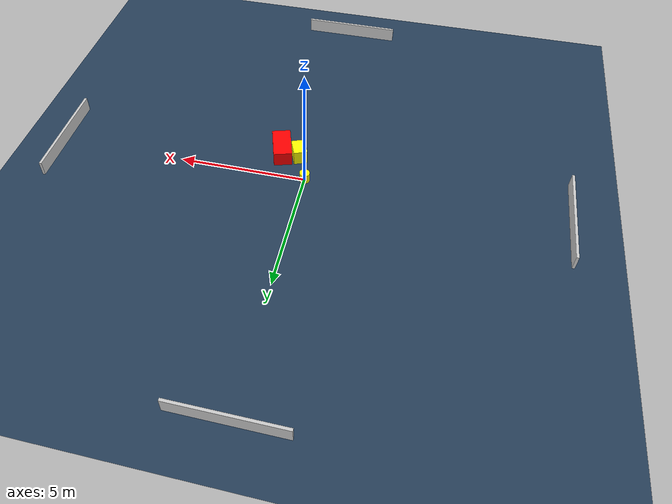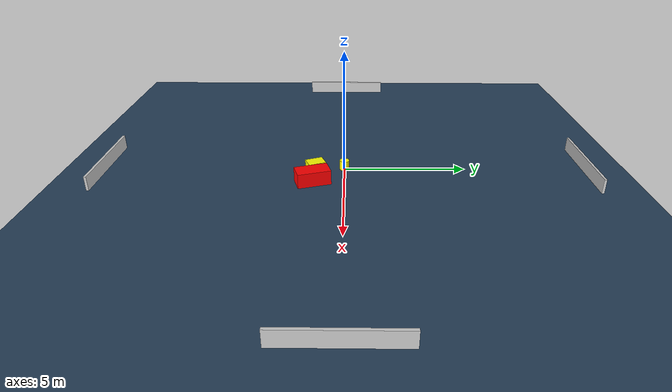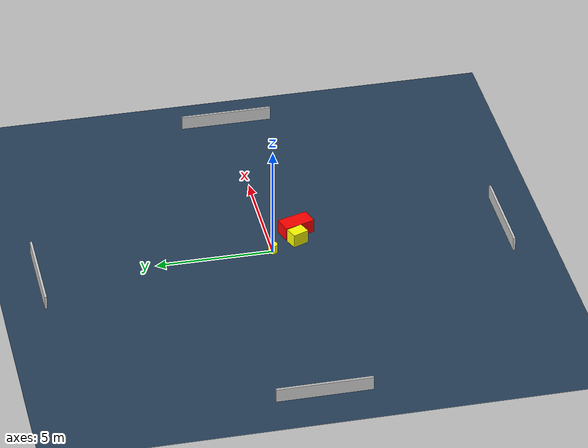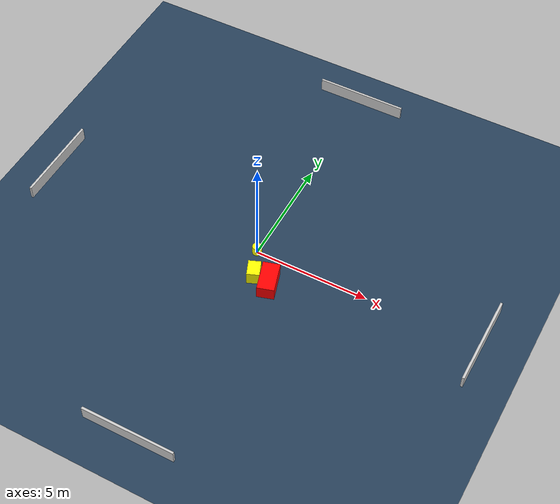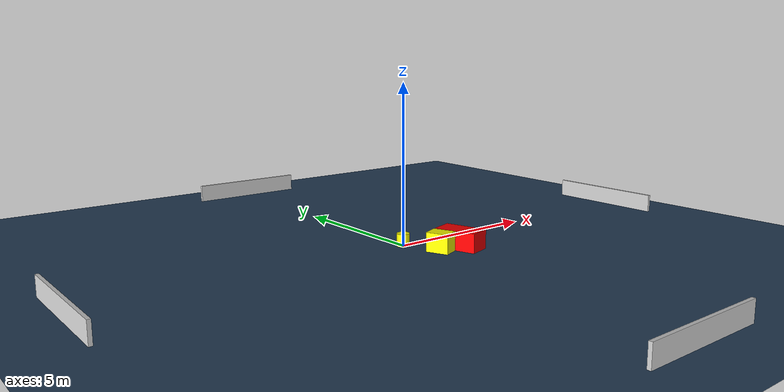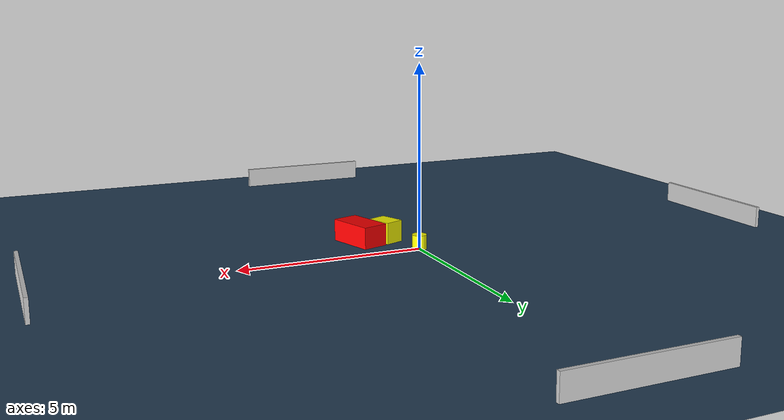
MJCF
<?xml version="1.0" ?>
<mujoco model="generated_environment">
  <option timestep="0.01" integrator="RK4" cone="elliptic"/>
  <default>
    <geom density="1"/>
  </default>
  <asset>
    <texture builtin="gradient" height="3072" name="skybox" rgb1="0.3 0.5 0.7" rgb2="0 0 0" type="skybox" width="512"/>
    <texture builtin="checker" height="300" name="groundplane" rgb1="0.2 0.3 0.4" rgb2="0.1 0.2 0.3" type="2d" width="300"/>
    <material name="groundplane" reflectance="0.2" texrepeat="5 5" texture="groundplane"/>
  </asset>
  <worldbody>
    <light dir="0 0 -1" directional="true" pos="0 0 1.5"/>
    <geom condim="3" friction="0.5 0.005 0.001" material="groundplane" name="floor" pos="0 0 0" size="0 0 0.05" type="plane"/>
    <body name="walls">
      <geom name="wall_1" condim="4" pos="-10.0 0.0 0.3" rgba="0.800000011920929 0.800000011920929 0.800000011920929 1.0" size="0.05 2.0 0.3" type="box"/>
      <geom name="wall_2" condim="4" pos="10.0 0.0 0.3" rgba="0.800000011920929 0.800000011920929 0.800000011920929 1.0" size="0.05 2.0 0.3" type="box"/>
      <geom name="wall_3" condim="4" pos="0.0 -10.0 0.3" rgba="0.800000011920929 0.800000011920929 0.800000011920929 1.0" size="2.0 0.05 0.3" type="box"/>
      <geom name="wall_4" condim="4" pos="0.0 10.0 0.3" rgba="0.800000011920929 0.800000011920929 0.800000011920929 1.0" size="2.0 0.05 0.3" type="box"/>
    </body>
    <body name="robot">
      <joint name="joint_x" type="slide" pos="0 0 0" axis="1 0 0"/>
      <joint name="joint_y" type="slide" pos="0 0 0" axis="0 1 0"/>
      <geom name="robot" type="cylinder" pos="0.0 0.0 0.2" size="0.2 0.2 0.0" mass="5.0" friction="1.0 0.005 0.0001" condim="4" rgba="1.0 1.0 0.0 1.0"/>
    </body>
    <body name="obstacle_1_movable">
      <geom name="obstacle_1_movable" condim="4" pos="0.4915577970497412 -1.1782770715132778 0.3" euler="0 0 21.909651739569156" friction="0.0 0.005 0.001" rgba="1.0 1.0 0.0 1.0" size="0.26785472261510523 0.3565793100329263 0.3" type="box" mass="0.1"/>
      <joint type="free"/>
    </body>
    <body name="obstacle_2_static">
      <geom name="obstacle_2_static" condim="4" pos="1.2148977580491411 -1.2646271292586797 0.3" euler="0 0 17.024870464787067" friction="0.0 0.005 0.001" rgba="1.0 0.0 0.0 1.0" size="0.36384182965054634 0.6788505654893002 0.3" type="box"/>
    </body>
  </worldbody>
  <actuator>
    <motor name="actuator_x" joint="joint_x" gear="1" ctrlrange="-1 1"/>
    <motor name="actuator_y" joint="joint_y" gear="1" ctrlrange="-1 1"/>
  </actuator>
</mujoco>
